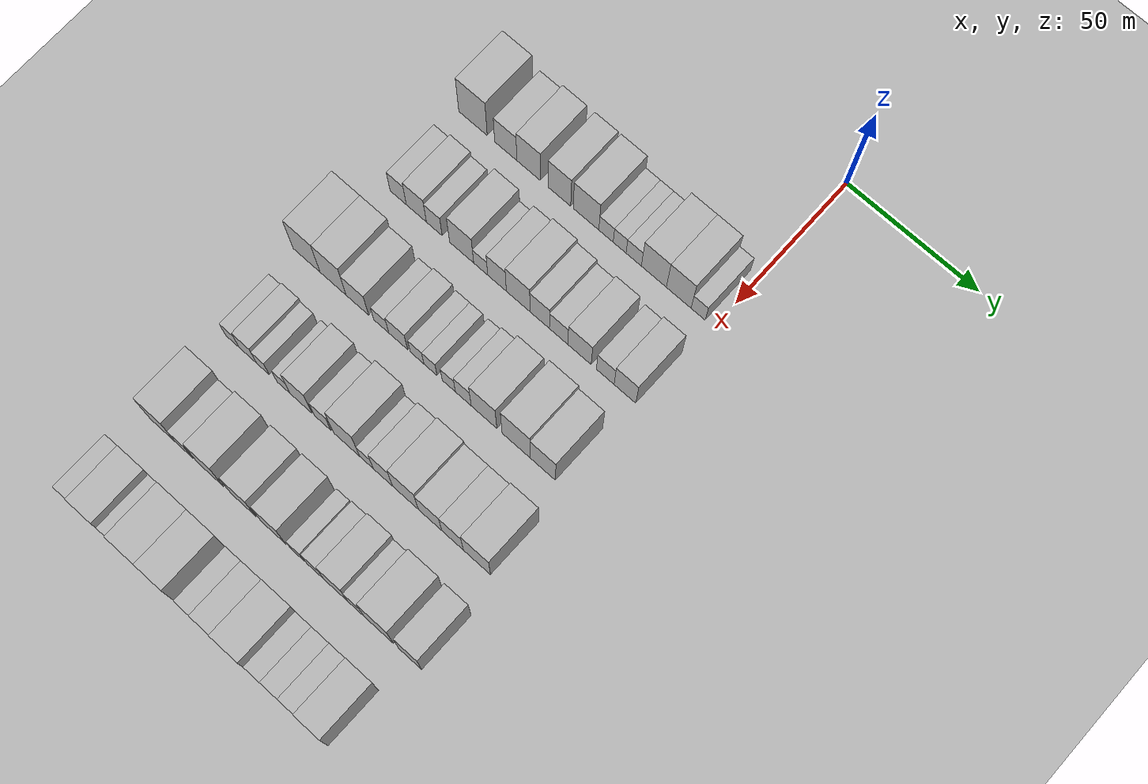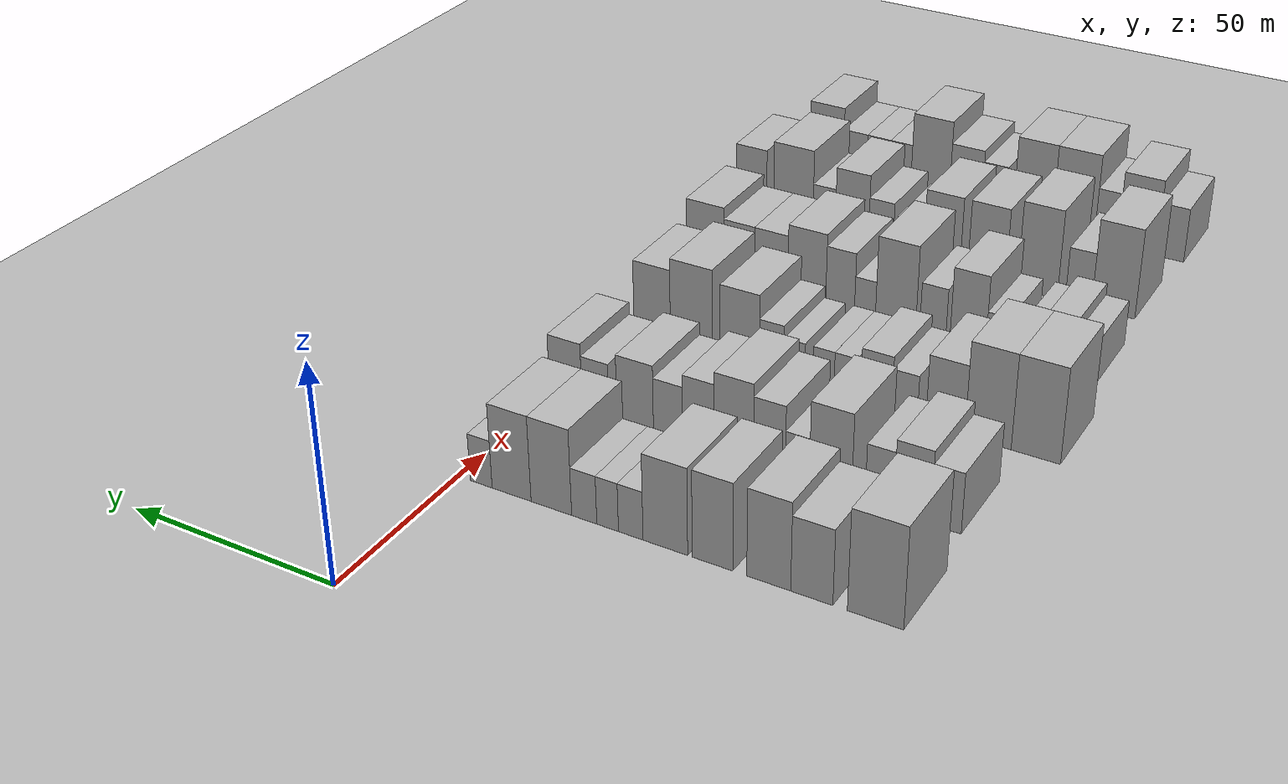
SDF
<sdf version="1.6">
 <world name="default">
  <include><name>ground_plane_1</name><uri>model://HANNAS_ground_plane</uri></include>
  <include>
   <name>ground_plane_2</name>
   <uri>model://HANNAS_ground_plane</uri>
   <pose>100 0 0  0 0 0</pose>
  </include>
  <model name="building_50">
   <static>1</static>
   <pose>50.0000 -94.4052 0 0.000000 0.000000 0.000000</pose>
   <link name="link">
    <pose>0 0 12.00 0 0 0</pose>
    <collision name="collision"><geometry><box><size>20.0000 11.4907 24.0000</size></box></geometry></collision>
    <visual name="visual">
     <cast_shadows>0</cast_shadows>
     <geometry><box><size>20.0000 11.4907 24.0000</size></box></geometry>
     <material>
      <script>
       <uri>model://HANNAS_wall/materials/scripts</uri>
       <uri>model://HANNAS_wall/materials/textures</uri>
       <name>vrc/HANNAS_wall</name>
      </script>
     </material>
    </visual>
   </link>
  </model>
  <model name="building_51">
   <static>1</static>
   <pose>50.0000 -81.2317 0 0.000000 0.000000 0.000000</pose>
   <link name="link">
    <pose>0 0 9.00 0 0 0</pose>
    <collision name="collision"><geometry><box><size>20.0000 8.8563 18.0000</size></box></geometry></collision>
    <visual name="visual">
     <cast_shadows>0</cast_shadows>
     <geometry><box><size>20.0000 8.8563 18.0000</size></box></geometry>
     <material>
      <script>
       <uri>model://HANNAS_wall/materials/scripts</uri>
       <uri>model://HANNAS_wall/materials/textures</uri>
       <name>vrc/HANNAS_wall</name>
      </script>
     </material>
    </visual>
   </link>
  </model>
  <model name="building_52">
   <static>1</static>
   <pose>50.0000 -72.1063 0 0.000000 0.000000 0.000000</pose>
   <link name="link">
    <pose>0 0 10.50 0 0 0</pose>
    <collision name="collision"><geometry><box><size>20.0000 9.3946 21.0000</size></box></geometry></collision>
    <visual name="visual">
     <cast_shadows>0</cast_shadows>
     <geometry><box><size>20.0000 9.3946 21.0000</size></box></geometry>
     <material>
      <script>
       <uri>model://HANNAS_wall/materials/scripts</uri>
       <uri>model://HANNAS_wall/materials/textures</uri>
       <name>vrc/HANNAS_wall</name>
      </script>
     </material>
    </visual>
   </link>
  </model>
  <model name="building_53">
   <static>1</static>
   <pose>50.0000 -59.9207 0 0.000000 0.000000 0.000000</pose>
   <link name="link">
    <pose>0 0 10.50 0 0 0</pose>
    <collision name="collision"><geometry><box><size>20.0000 8.9766 21.0000</size></box></geometry></collision>
    <visual name="visual">
     <cast_shadows>0</cast_shadows>
     <geometry><box><size>20.0000 8.9766 21.0000</size></box></geometry>
     <material>
      <script>
       <uri>model://HANNAS_wall/materials/scripts</uri>
       <uri>model://HANNAS_wall/materials/textures</uri>
       <name>vrc/HANNAS_wall</name>
      </script>
     </material>
    </visual>
   </link>
  </model>
  <model name="building_54">
   <static>1</static>
   <pose>50.0000 -49.4087 0 0.000000 0.000000 0.000000</pose>
   <link name="link">
    <pose>0 0 10.50 0 0 0</pose>
    <collision name="collision"><geometry><box><size>20.0000 10.0475 21.0000</size></box></geometry></collision>
    <visual name="visual">
     <cast_shadows>0</cast_shadows>
     <geometry><box><size>20.0000 10.0475 21.0000</size></box></geometry>
     <material>
      <script>
       <uri>model://HANNAS_wall/materials/scripts</uri>
       <uri>model://HANNAS_wall/materials/textures</uri>
       <name>vrc/HANNAS_wall</name>
      </script>
     </material>
    </visual>
   </link>
  </model>
  <model name="building_55">
   <static>1</static>
   <pose>50.0000 -41.5668 0 0.000000 0.000000 0.000000</pose>
   <link name="link">
    <pose>0 0 6.00 0 0 0</pose>
    <collision name="collision"><geometry><box><size>20.0000 5.6363 12.0000</size></box></geometry></collision>
    <visual name="visual">
     <cast_shadows>0</cast_shadows>
     <geometry><box><size>20.0000 5.6363 12.0000</size></box></geometry>
     <material>
      <script>
       <uri>model://HANNAS_wall/materials/scripts</uri>
       <uri>model://HANNAS_wall/materials/textures</uri>
       <name>vrc/HANNAS_wall</name>
      </script>
     </material>
    </visual>
   </link>
  </model>
  <model name="building_56">
   <static>1</static>
   <pose>50.0000 -36.2396 0 0.000000 0.000000 0.000000</pose>
   <link name="link">
    <pose>0 0 6.00 0 0 0</pose>
    <collision name="collision"><geometry><box><size>20.0000 5.0181 12.0000</size></box></geometry></collision>
    <visual name="visual">
     <cast_shadows>0</cast_shadows>
     <geometry><box><size>20.0000 5.0181 12.0000</size></box></geometry>
     <material>
      <script>
       <uri>model://HANNAS_wall/materials/scripts</uri>
       <uri>model://HANNAS_wall/materials/textures</uri>
       <name>vrc/HANNAS_wall</name>
      </script>
     </material>
    </visual>
   </link>
  </model>
  <model name="building_57">
   <static>1</static>
   <pose>50.0000 -30.7826 0 0.000000 0.000000 0.000000</pose>
   <link name="link">
    <pose>0 0 6.00 0 0 0</pose>
    <collision name="collision"><geometry><box><size>20.0000 5.8959 12.0000</size></box></geometry></collision>
    <visual name="visual">
     <cast_shadows>0</cast_shadows>
     <geometry><box><size>20.0000 5.8959 12.0000</size></box></geometry>
     <material>
      <script>
       <uri>model://HANNAS_wall/materials/scripts</uri>
       <uri>model://HANNAS_wall/materials/textures</uri>
       <name>vrc/HANNAS_wall</name>
      </script>
     </material>
    </visual>
   </link>
  </model>
  <model name="building_58">
   <static>1</static>
   <pose>50.0000 -22.9984 0 0.000000 0.000000 0.000000</pose>
   <link name="link">
    <pose>0 0 10.50 0 0 0</pose>
    <collision name="collision"><geometry><box><size>20.0000 9.6725 21.0000</size></box></geometry></collision>
    <visual name="visual">
     <cast_shadows>0</cast_shadows>
     <geometry><box><size>20.0000 9.6725 21.0000</size></box></geometry>
     <material>
      <script>
       <uri>model://HANNAS_wall/materials/scripts</uri>
       <uri>model://HANNAS_wall/materials/textures</uri>
       <name>vrc/HANNAS_wall</name>
      </script>
     </material>
    </visual>
   </link>
  </model>
  <model name="building_59">
   <static>1</static>
   <pose>50.0000 -13.4213 0 0.000000 0.000000 0.000000</pose>
   <link name="link">
    <pose>0 0 10.50 0 0 0</pose>
    <collision name="collision"><geometry><box><size>20.0000 9.4817 21.0000</size></box></geometry></collision>
    <visual name="visual">
     <cast_shadows>0</cast_shadows>
     <geometry><box><size>20.0000 9.4817 21.0000</size></box></geometry>
     <material>
      <script>
       <uri>model://HANNAS_wall/materials/scripts</uri>
       <uri>model://HANNAS_wall/materials/textures</uri>
       <name>vrc/HANNAS_wall</name>
      </script>
     </material>
    </visual>
   </link>
  </model>
  <model name="building_60">
   <static>1</static>
   <pose>50.0000 -5.9939 0 0.000000 0.000000 0.000000</pose>
   <link name="link">
    <pose>0 0 6.00 0 0 0</pose>
    <collision name="collision"><geometry><box><size>20.0000 5.3731 12.0000</size></box></geometry></collision>
    <visual name="visual">
     <cast_shadows>0</cast_shadows>
     <geometry><box><size>20.0000 5.3731 12.0000</size></box></geometry>
     <material>
      <script>
       <uri>model://HANNAS_wall/materials/scripts</uri>
       <uri>model://HANNAS_wall/materials/textures</uri>
       <name>vrc/HANNAS_wall</name>
      </script>
     </material>
    </visual>
   </link>
  </model>
  <model name="building_169">
   <static>1</static>
   <pose>82.0000 -94.7656 0 0.000000 0.000000 0.000000</pose>
   <link name="link">
    <pose>0 0 7.50 0 0 0</pose>
    <collision name="collision"><geometry><box><size>20.0000 6.5444 15.0000</size></box></geometry></collision>
    <visual name="visual">
     <cast_shadows>0</cast_shadows>
     <geometry><box><size>20.0000 6.5444 15.0000</size></box></geometry>
     <material>
      <script>
       <uri>model://HANNAS_wall/materials/scripts</uri>
       <uri>model://HANNAS_wall/materials/textures</uri>
       <name>vrc/HANNAS_wall</name>
      </script>
     </material>
    </visual>
   </link>
  </model>
  <model name="building_170">
   <static>1</static>
   <pose>82.0000 -87.4592 0 0.000000 0.000000 0.000000</pose>
   <link name="link">
    <pose>0 0 9.00 0 0 0</pose>
    <collision name="collision"><geometry><box><size>20.0000 8.0684 18.0000</size></box></geometry></collision>
    <visual name="visual">
     <cast_shadows>0</cast_shadows>
     <geometry><box><size>20.0000 8.0684 18.0000</size></box></geometry>
     <material>
      <script>
       <uri>model://HANNAS_wall/materials/scripts</uri>
       <uri>model://HANNAS_wall/materials/textures</uri>
       <name>vrc/HANNAS_wall</name>
      </script>
     </material>
    </visual>
   </link>
  </model>
  <model name="building_171">
   <static>1</static>
   <pose>82.0000 -80.2852 0 0.000000 0.000000 0.000000</pose>
   <link name="link">
    <pose>0 0 7.50 0 0 0</pose>
    <collision name="collision"><geometry><box><size>20.0000 6.2796 15.0000</size></box></geometry></collision>
    <visual name="visual">
     <cast_shadows>0</cast_shadows>
     <geometry><box><size>20.0000 6.2796 15.0000</size></box></geometry>
     <material>
      <script>
       <uri>model://HANNAS_wall/materials/scripts</uri>
       <uri>model://HANNAS_wall/materials/textures</uri>
       <name>vrc/HANNAS_wall</name>
      </script>
     </material>
    </visual>
   </link>
  </model>
  <model name="building_172">
   <static>1</static>
   <pose>82.0000 -69.3797 0 0.000000 0.000000 0.000000</pose>
   <link name="link">
    <pose>0 0 10.50 0 0 0</pose>
    <collision name="collision"><geometry><box><size>20.0000 9.5313 21.0000</size></box></geometry></collision>
    <visual name="visual">
     <cast_shadows>0</cast_shadows>
     <geometry><box><size>20.0000 9.5313 21.0000</size></box></geometry>
     <material>
      <script>
       <uri>model://HANNAS_wall/materials/scripts</uri>
       <uri>model://HANNAS_wall/materials/textures</uri>
       <name>vrc/HANNAS_wall</name>
      </script>
     </material>
    </visual>
   </link>
  </model>
  <model name="building_173">
   <static>1</static>
   <pose>82.0000 -61.8557 0 0.000000 0.000000 0.000000</pose>
   <link name="link">
    <pose>0 0 6.00 0 0 0</pose>
    <collision name="collision"><geometry><box><size>20.0000 5.5168 12.0000</size></box></geometry></collision>
    <visual name="visual">
     <cast_shadows>0</cast_shadows>
     <geometry><box><size>20.0000 5.5168 12.0000</size></box></geometry>
     <material>
      <script>
       <uri>model://HANNAS_wall/materials/scripts</uri>
       <uri>model://HANNAS_wall/materials/textures</uri>
       <name>vrc/HANNAS_wall</name>
      </script>
     </material>
    </visual>
   </link>
  </model>
  <model name="building_174">
   <static>1</static>
   <pose>82.0000 -55.4365 0 0.000000 0.000000 0.000000</pose>
   <link name="link">
    <pose>0 0 9.00 0 0 0</pose>
    <collision name="collision"><geometry><box><size>20.0000 7.3216 18.0000</size></box></geometry></collision>
    <visual name="visual">
     <cast_shadows>0</cast_shadows>
     <geometry><box><size>20.0000 7.3216 18.0000</size></box></geometry>
     <material>
      <script>
       <uri>model://HANNAS_wall/materials/scripts</uri>
       <uri>model://HANNAS_wall/materials/textures</uri>
       <name>vrc/HANNAS_wall</name>
      </script>
     </material>
    </visual>
   </link>
  </model>
  <model name="building_175">
   <static>1</static>
   <pose>82.0000 -47.1397 0 0.000000 0.000000 0.000000</pose>
   <link name="link">
    <pose>0 0 10.50 0 0 0</pose>
    <collision name="collision"><geometry><box><size>20.0000 9.2719 21.0000</size></box></geometry></collision>
    <visual name="visual">
     <cast_shadows>0</cast_shadows>
     <geometry><box><size>20.0000 9.2719 21.0000</size></box></geometry>
     <material>
      <script>
       <uri>model://HANNAS_wall/materials/scripts</uri>
       <uri>model://HANNAS_wall/materials/textures</uri>
       <name>vrc/HANNAS_wall</name>
      </script>
     </material>
    </visual>
   </link>
  </model>
  <model name="building_176">
   <static>1</static>
   <pose>82.0000 -38.7303 0 0.000000 0.000000 0.000000</pose>
   <link name="link">
    <pose>0 0 9.00 0 0 0</pose>
    <collision name="collision"><geometry><box><size>20.0000 7.5469 18.0000</size></box></geometry></collision>
    <visual name="visual">
     <cast_shadows>0</cast_shadows>
     <geometry><box><size>20.0000 7.5469 18.0000</size></box></geometry>
     <material>
      <script>
       <uri>model://HANNAS_wall/materials/scripts</uri>
       <uri>model://HANNAS_wall/materials/textures</uri>
       <name>vrc/HANNAS_wall</name>
      </script>
     </material>
    </visual>
   </link>
  </model>
  <model name="building_177">
   <static>1</static>
   <pose>82.0000 -31.4057 0 0.000000 0.000000 0.000000</pose>
   <link name="link">
    <pose>0 0 7.50 0 0 0</pose>
    <collision name="collision"><geometry><box><size>20.0000 7.1025 15.0000</size></box></geometry></collision>
    <visual name="visual">
     <cast_shadows>0</cast_shadows>
     <geometry><box><size>20.0000 7.1025 15.0000</size></box></geometry>
     <material>
      <script>
       <uri>model://HANNAS_wall/materials/scripts</uri>
       <uri>model://HANNAS_wall/materials/textures</uri>
       <name>vrc/HANNAS_wall</name>
      </script>
     </material>
    </visual>
   </link>
  </model>
  <model name="building_178">
   <static>1</static>
   <pose>82.0000 -23.3582 0 0.000000 0.000000 0.000000</pose>
   <link name="link">
    <pose>0 0 9.00 0 0 0</pose>
    <collision name="collision"><geometry><box><size>20.0000 8.9924 18.0000</size></box></geometry></collision>
    <visual name="visual">
     <cast_shadows>0</cast_shadows>
     <geometry><box><size>20.0000 8.9924 18.0000</size></box></geometry>
     <material>
      <script>
       <uri>model://HANNAS_wall/materials/scripts</uri>
       <uri>model://HANNAS_wall/materials/textures</uri>
       <name>vrc/HANNAS_wall</name>
      </script>
     </material>
    </visual>
   </link>
  </model>
  <model name="building_179">
   <static>1</static>
   <pose>82.0000 -13.4726 0 0.000000 0.000000 0.000000</pose>
   <link name="link">
    <pose>0 0 7.50 0 0 0</pose>
    <collision name="collision"><geometry><box><size>20.0000 6.7789 15.0000</size></box></geometry></collision>
    <visual name="visual">
     <cast_shadows>0</cast_shadows>
     <geometry><box><size>20.0000 6.7789 15.0000</size></box></geometry>
     <material>
      <script>
       <uri>model://HANNAS_wall/materials/scripts</uri>
       <uri>model://HANNAS_wall/materials/textures</uri>
       <name>vrc/HANNAS_wall</name>
      </script>
     </material>
    </visual>
   </link>
  </model>
  <model name="building_180">
   <static>1</static>
   <pose>82.0000 -5.9499 0 0.000000 0.000000 0.000000</pose>
   <link name="link">
    <pose>0 0 9.00 0 0 0</pose>
    <collision name="collision"><geometry><box><size>20.0000 8.2663 18.0000</size></box></geometry></collision>
    <visual name="visual">
     <cast_shadows>0</cast_shadows>
     <geometry><box><size>20.0000 8.2663 18.0000</size></box></geometry>
     <material>
      <script>
       <uri>model://HANNAS_wall/materials/scripts</uri>
       <uri>model://HANNAS_wall/materials/textures</uri>
       <name>vrc/HANNAS_wall</name>
      </script>
     </material>
    </visual>
   </link>
  </model>
  <model name="building_291">
   <static>1</static>
   <pose>114.0000 -101.2727 0 0.000000 0.000000 0.000000</pose>
   <link name="link">
    <pose>0 0 12.00 0 0 0</pose>
    <collision name="collision"><geometry><box><size>20.0000 10.9238 24.0000</size></box></geometry></collision>
    <visual name="visual">
     <cast_shadows>0</cast_shadows>
     <geometry><box><size>20.0000 10.9238 24.0000</size></box></geometry>
     <material>
      <script>
       <uri>model://HANNAS_wall/materials/scripts</uri>
       <uri>model://HANNAS_wall/materials/textures</uri>
       <name>vrc/HANNAS_wall</name>
      </script>
     </material>
    </visual>
   </link>
  </model>
  <model name="building_292">
   <static>1</static>
   <pose>114.0000 -90.5725 0 0.000000 0.000000 0.000000</pose>
   <link name="link">
    <pose>0 0 12.00 0 0 0</pose>
    <collision name="collision"><geometry><box><size>20.0000 10.4765 24.0000</size></box></geometry></collision>
    <visual name="visual">
     <cast_shadows>0</cast_shadows>
     <geometry><box><size>20.0000 10.4765 24.0000</size></box></geometry>
     <material>
      <script>
       <uri>model://HANNAS_wall/materials/scripts</uri>
       <uri>model://HANNAS_wall/materials/textures</uri>
       <name>vrc/HANNAS_wall</name>
      </script>
     </material>
    </visual>
   </link>
  </model>
  <model name="building_293">
   <static>1</static>
   <pose>114.0000 -80.8494 0 0.000000 0.000000 0.000000</pose>
   <link name="link">
    <pose>0 0 9.00 0 0 0</pose>
    <collision name="collision"><geometry><box><size>20.0000 8.9698 18.0000</size></box></geometry></collision>
    <visual name="visual">
     <cast_shadows>0</cast_shadows>
     <geometry><box><size>20.0000 8.9698 18.0000</size></box></geometry>
     <material>
      <script>
       <uri>model://HANNAS_wall/materials/scripts</uri>
       <uri>model://HANNAS_wall/materials/textures</uri>
       <name>vrc/HANNAS_wall</name>
      </script>
     </material>
    </visual>
   </link>
  </model>
  <model name="building_294">
   <static>1</static>
   <pose>114.0000 -71.3711 0 0.000000 0.000000 0.000000</pose>
   <link name="link">
    <pose>0 0 6.00 0 0 0</pose>
    <collision name="collision"><geometry><box><size>20.0000 5.9868 12.0000</size></box></geometry></collision>
    <visual name="visual">
     <cast_shadows>0</cast_shadows>
     <geometry><box><size>20.0000 5.9868 12.0000</size></box></geometry>
     <material>
      <script>
       <uri>model://HANNAS_wall/materials/scripts</uri>
       <uri>model://HANNAS_wall/materials/textures</uri>
       <name>vrc/HANNAS_wall</name>
      </script>
     </material>
    </visual>
   </link>
  </model>
  <model name="building_295">
   <static>1</static>
   <pose>114.0000 -64.6428 0 0.000000 0.000000 0.000000</pose>
   <link name="link">
    <pose>0 0 7.50 0 0 0</pose>
    <collision name="collision"><geometry><box><size>20.0000 7.4697 15.0000</size></box></geometry></collision>
    <visual name="visual">
     <cast_shadows>0</cast_shadows>
     <geometry><box><size>20.0000 7.4697 15.0000</size></box></geometry>
     <material>
      <script>
       <uri>model://HANNAS_wall/materials/scripts</uri>
       <uri>model://HANNAS_wall/materials/textures</uri>
       <name>vrc/HANNAS_wall</name>
      </script>
     </material>
    </visual>
   </link>
  </model>
  <model name="building_296">
   <static>1</static>
   <pose>114.0000 -57.2158 0 0.000000 0.000000 0.000000</pose>
   <link name="link">
    <pose>0 0 6.00 0 0 0</pose>
    <collision name="collision"><geometry><box><size>20.0000 5.3844 12.0000</size></box></geometry></collision>
    <visual name="visual">
     <cast_shadows>0</cast_shadows>
     <geometry><box><size>20.0000 5.3844 12.0000</size></box></geometry>
     <material>
      <script>
       <uri>model://HANNAS_wall/materials/scripts</uri>
       <uri>model://HANNAS_wall/materials/textures</uri>
       <name>vrc/HANNAS_wall</name>
      </script>
     </material>
    </visual>
   </link>
  </model>
  <model name="building_297">
   <static>1</static>
   <pose>114.0000 -51.9640 0 0.000000 0.000000 0.000000</pose>
   <link name="link">
    <pose>0 0 6.00 0 0 0</pose>
    <collision name="collision"><geometry><box><size>20.0000 5.1191 12.0000</size></box></geometry></collision>
    <visual name="visual">
     <cast_shadows>0</cast_shadows>
     <geometry><box><size>20.0000 5.1191 12.0000</size></box></geometry>
     <material>
      <script>
       <uri>model://HANNAS_wall/materials/scripts</uri>
       <uri>model://HANNAS_wall/materials/textures</uri>
       <name>vrc/HANNAS_wall</name>
      </script>
     </material>
    </visual>
   </link>
  </model>
  <model name="building_298">
   <static>1</static>
   <pose>114.0000 -44.8151 0 0.000000 0.000000 0.000000</pose>
   <link name="link">
    <pose>0 0 6.00 0 0 0</pose>
    <collision name="collision"><geometry><box><size>20.0000 5.1787 12.0000</size></box></geometry></collision>
    <visual name="visual">
     <cast_shadows>0</cast_shadows>
     <geometry><box><size>20.0000 5.1787 12.0000</size></box></geometry>
     <material>
      <script>
       <uri>model://HANNAS_wall/materials/scripts</uri>
       <uri>model://HANNAS_wall/materials/textures</uri>
       <name>vrc/HANNAS_wall</name>
      </script>
     </material>
    </visual>
   </link>
  </model>
  <model name="building_299">
   <static>1</static>
   <pose>114.0000 -39.1626 0 0.000000 0.000000 0.000000</pose>
   <link name="link">
    <pose>0 0 7.50 0 0 0</pose>
    <collision name="collision"><geometry><box><size>20.0000 6.1263 15.0000</size></box></geometry></collision>
    <visual name="visual">
     <cast_shadows>0</cast_shadows>
     <geometry><box><size>20.0000 6.1263 15.0000</size></box></geometry>
     <material>
      <script>
       <uri>model://HANNAS_wall/materials/scripts</uri>
       <uri>model://HANNAS_wall/materials/textures</uri>
       <name>vrc/HANNAS_wall</name>
      </script>
     </material>
    </visual>
   </link>
  </model>
  <model name="building_300">
   <static>1</static>
   <pose>114.0000 -31.1533 0 0.000000 0.000000 0.000000</pose>
   <link name="link">
    <pose>0 0 10.50 0 0 0</pose>
    <collision name="collision"><geometry><box><size>20.0000 9.8924 21.0000</size></box></geometry></collision>
    <visual name="visual">
     <cast_shadows>0</cast_shadows>
     <geometry><box><size>20.0000 9.8924 21.0000</size></box></geometry>
     <material>
      <script>
       <uri>model://HANNAS_wall/materials/scripts</uri>
       <uri>model://HANNAS_wall/materials/textures</uri>
       <name>vrc/HANNAS_wall</name>
      </script>
     </material>
    </visual>
   </link>
  </model>
  <model name="building_301">
   <static>1</static>
   <pose>114.0000 -18.8067 0 0.000000 0.000000 0.000000</pose>
   <link name="link">
    <pose>0 0 12.00 0 0 0</pose>
    <collision name="collision"><geometry><box><size>20.0000 10.8009 24.0000</size></box></geometry></collision>
    <visual name="visual">
     <cast_shadows>0</cast_shadows>
     <geometry><box><size>20.0000 10.8009 24.0000</size></box></geometry>
     <material>
      <script>
       <uri>model://HANNAS_wall/materials/scripts</uri>
       <uri>model://HANNAS_wall/materials/textures</uri>
       <name>vrc/HANNAS_wall</name>
      </script>
     </material>
    </visual>
   </link>
  </model>
  <model name="building_302">
   <static>1</static>
   <pose>114.0000 -8.6212 0 0.000000 0.000000 0.000000</pose>
   <link name="link">
    <pose>0 0 10.50 0 0 0</pose>
    <collision name="collision"><geometry><box><size>20.0000 9.5701 21.0000</size></box></geometry></collision>
    <visual name="visual">
     <cast_shadows>0</cast_shadows>
     <geometry><box><size>20.0000 9.5701 21.0000</size></box></geometry>
     <material>
      <script>
       <uri>model://HANNAS_wall/materials/scripts</uri>
       <uri>model://HANNAS_wall/materials/textures</uri>
       <name>vrc/HANNAS_wall</name>
      </script>
     </material>
    </visual>
   </link>
  </model>
  <model name="building_410">
   <static>1</static>
   <pose>146.0000 -99.9660 0 0.000000 0.000000 0.000000</pose>
   <link name="link">
    <pose>0 0 6.00 0 0 0</pose>
    <collision name="collision"><geometry><box><size>20.0000 5.4982 12.0000</size></box></geometry></collision>
    <visual name="visual">
     <cast_shadows>0</cast_shadows>
     <geometry><box><size>20.0000 5.4982 12.0000</size></box></geometry>
     <material>
      <script>
       <uri>model://HANNAS_wall/materials/scripts</uri>
       <uri>model://HANNAS_wall/materials/textures</uri>
       <name>vrc/HANNAS_wall</name>
      </script>
     </material>
    </visual>
   </link>
  </model>
  <model name="building_411">
   <static>1</static>
   <pose>146.0000 -93.7196 0 0.000000 0.000000 0.000000</pose>
   <link name="link">
    <pose>0 0 7.50 0 0 0</pose>
    <collision name="collision"><geometry><box><size>20.0000 6.9946 15.0000</size></box></geometry></collision>
    <visual name="visual">
     <cast_shadows>0</cast_shadows>
     <geometry><box><size>20.0000 6.9946 15.0000</size></box></geometry>
     <material>
      <script>
       <uri>model://HANNAS_wall/materials/scripts</uri>
       <uri>model://HANNAS_wall/materials/textures</uri>
       <name>vrc/HANNAS_wall</name>
      </script>
     </material>
    </visual>
   </link>
  </model>
  <model name="building_412">
   <static>1</static>
   <pose>146.0000 -87.6967 0 0.000000 0.000000 0.000000</pose>
   <link name="link">
    <pose>0 0 6.00 0 0 0</pose>
    <collision name="collision"><geometry><box><size>20.0000 5.0512 12.0000</size></box></geometry></collision>
    <visual name="visual">
     <cast_shadows>0</cast_shadows>
     <geometry><box><size>20.0000 5.0512 12.0000</size></box></geometry>
     <material>
      <script>
       <uri>model://HANNAS_wall/materials/scripts</uri>
       <uri>model://HANNAS_wall/materials/textures</uri>
       <name>vrc/HANNAS_wall</name>
      </script>
     </material>
    </visual>
   </link>
  </model>
  <model name="building_413">
   <static>1</static>
   <pose>146.0000 -79.4917 0 0.000000 0.000000 0.000000</pose>
   <link name="link">
    <pose>0 0 6.00 0 0 0</pose>
    <collision name="collision"><geometry><box><size>20.0000 5.3588 12.0000</size></box></geometry></collision>
    <visual name="visual">
     <cast_shadows>0</cast_shadows>
     <geometry><box><size>20.0000 5.3588 12.0000</size></box></geometry>
     <material>
      <script>
       <uri>model://HANNAS_wall/materials/scripts</uri>
       <uri>model://HANNAS_wall/materials/textures</uri>
       <name>vrc/HANNAS_wall</name>
      </script>
     </material>
    </visual>
   </link>
  </model>
  <model name="building_414">
   <static>1</static>
   <pose>146.0000 -72.4729 0 0.000000 0.000000 0.000000</pose>
   <link name="link">
    <pose>0 0 10.50 0 0 0</pose>
    <collision name="collision"><geometry><box><size>20.0000 8.6789 21.0000</size></box></geometry></collision>
    <visual name="visual">
     <cast_shadows>0</cast_shadows>
     <geometry><box><size>20.0000 8.6789 21.0000</size></box></geometry>
     <material>
      <script>
       <uri>model://HANNAS_wall/materials/scripts</uri>
       <uri>model://HANNAS_wall/materials/textures</uri>
       <name>vrc/HANNAS_wall</name>
      </script>
     </material>
    </visual>
   </link>
  </model>
  <model name="building_415">
   <static>1</static>
   <pose>146.0000 -63.8950 0 0.000000 0.000000 0.000000</pose>
   <link name="link">
    <pose>0 0 7.50 0 0 0</pose>
    <collision name="collision"><geometry><box><size>20.0000 6.4769 15.0000</size></box></geometry></collision>
    <visual name="visual">
     <cast_shadows>0</cast_shadows>
     <geometry><box><size>20.0000 6.4769 15.0000</size></box></geometry>
     <material>
      <script>
       <uri>model://HANNAS_wall/materials/scripts</uri>
       <uri>model://HANNAS_wall/materials/textures</uri>
       <name>vrc/HANNAS_wall</name>
      </script>
     </material>
    </visual>
   </link>
  </model>
  <model name="building_416">
   <static>1</static>
   <pose>146.0000 -54.5847 0 0.000000 0.000000 0.000000</pose>
   <link name="link">
    <pose>0 0 12.00 0 0 0</pose>
    <collision name="collision"><geometry><box><size>20.0000 10.1435 24.0000</size></box></geometry></collision>
    <visual name="visual">
     <cast_shadows>0</cast_shadows>
     <geometry><box><size>20.0000 10.1435 24.0000</size></box></geometry>
     <material>
      <script>
       <uri>model://HANNAS_wall/materials/scripts</uri>
       <uri>model://HANNAS_wall/materials/textures</uri>
       <name>vrc/HANNAS_wall</name>
      </script>
     </material>
    </visual>
   </link>
  </model>
  <model name="building_417">
   <static>1</static>
   <pose>146.0000 -46.8378 0 0.000000 0.000000 0.000000</pose>
   <link name="link">
    <pose>0 0 6.00 0 0 0</pose>
    <collision name="collision"><geometry><box><size>20.0000 5.3503 12.0000</size></box></geometry></collision>
    <visual name="visual">
     <cast_shadows>0</cast_shadows>
     <geometry><box><size>20.0000 5.3503 12.0000</size></box></geometry>
     <material>
      <script>
       <uri>model://HANNAS_wall/materials/scripts</uri>
       <uri>model://HANNAS_wall/materials/textures</uri>
       <name>vrc/HANNAS_wall</name>
      </script>
     </material>
    </visual>
   </link>
  </model>
  <model name="building_418">
   <static>1</static>
   <pose>146.0000 -40.4342 0 0.000000 0.000000 0.000000</pose>
   <link name="link">
    <pose>0 0 9.00 0 0 0</pose>
    <collision name="collision"><geometry><box><size>20.0000 7.4569 18.0000</size></box></geometry></collision>
    <visual name="visual">
     <cast_shadows>0</cast_shadows>
     <geometry><box><size>20.0000 7.4569 18.0000</size></box></geometry>
     <material>
      <script>
       <uri>model://HANNAS_wall/materials/scripts</uri>
       <uri>model://HANNAS_wall/materials/textures</uri>
       <name>vrc/HANNAS_wall</name>
      </script>
     </material>
    </visual>
   </link>
  </model>
  <model name="building_419">
   <static>1</static>
   <pose>146.0000 -31.7131 0 0.000000 0.000000 0.000000</pose>
   <link name="link">
    <pose>0 0 10.50 0 0 0</pose>
    <collision name="collision"><geometry><box><size>20.0000 9.9855 21.0000</size></box></geometry></collision>
    <visual name="visual">
     <cast_shadows>0</cast_shadows>
     <geometry><box><size>20.0000 9.9855 21.0000</size></box></geometry>
     <material>
      <script>
       <uri>model://HANNAS_wall/materials/scripts</uri>
       <uri>model://HANNAS_wall/materials/textures</uri>
       <name>vrc/HANNAS_wall</name>
      </script>
     </material>
    </visual>
   </link>
  </model>
  <model name="building_420">
   <static>1</static>
   <pose>146.0000 -22.2542 0 0.000000 0.000000 0.000000</pose>
   <link name="link">
    <pose>0 0 9.00 0 0 0</pose>
    <collision name="collision"><geometry><box><size>20.0000 8.9322 18.0000</size></box></geometry></collision>
    <visual name="visual">
     <cast_shadows>0</cast_shadows>
     <geometry><box><size>20.0000 8.9322 18.0000</size></box></geometry>
     <material>
      <script>
       <uri>model://HANNAS_wall/materials/scripts</uri>
       <uri>model://HANNAS_wall/materials/textures</uri>
       <name>vrc/HANNAS_wall</name>
      </script>
     </material>
    </visual>
   </link>
  </model>
  <model name="building_421">
   <static>1</static>
   <pose>146.0000 -13.6886 0 0.000000 0.000000 0.000000</pose>
   <link name="link">
    <pose>0 0 9.00 0 0 0</pose>
    <collision name="collision"><geometry><box><size>20.0000 8.1992 18.0000</size></box></geometry></collision>
    <visual name="visual">
     <cast_shadows>0</cast_shadows>
     <geometry><box><size>20.0000 8.1992 18.0000</size></box></geometry>
     <material>
      <script>
       <uri>model://HANNAS_wall/materials/scripts</uri>
       <uri>model://HANNAS_wall/materials/textures</uri>
       <name>vrc/HANNAS_wall</name>
      </script>
     </material>
    </visual>
   </link>
  </model>
  <model name="building_422">
   <static>1</static>
   <pose>146.0000 -4.4337 0 0.000000 0.000000 0.000000</pose>
   <link name="link">
    <pose>0 0 10.50 0 0 0</pose>
    <collision name="collision"><geometry><box><size>20.0000 10.3105 21.0000</size></box></geometry></collision>
    <visual name="visual">
     <cast_shadows>0</cast_shadows>
     <geometry><box><size>20.0000 10.3105 21.0000</size></box></geometry>
     <material>
      <script>
       <uri>model://HANNAS_wall/materials/scripts</uri>
       <uri>model://HANNAS_wall/materials/textures</uri>
       <name>vrc/HANNAS_wall</name>
      </script>
     </material>
    </visual>
   </link>
  </model>
  <model name="building_530">
   <static>1</static>
   <pose>178.0000 -95.8446 0 0.000000 0.000000 0.000000</pose>
   <link name="link">
    <pose>0 0 12.00 0 0 0</pose>
    <collision name="collision"><geometry><box><size>20.0000 10.5794 24.0000</size></box></geometry></collision>
    <visual name="visual">
     <cast_shadows>0</cast_shadows>
     <geometry><box><size>20.0000 10.5794 24.0000</size></box></geometry>
     <material>
      <script>
       <uri>model://HANNAS_wall/materials/scripts</uri>
       <uri>model://HANNAS_wall/materials/textures</uri>
       <name>vrc/HANNAS_wall</name>
      </script>
     </material>
    </visual>
   </link>
  </model>
  <model name="building_531">
   <static>1</static>
   <pose>178.0000 -87.3050 0 0.000000 0.000000 0.000000</pose>
   <link name="link">
    <pose>0 0 7.50 0 0 0</pose>
    <collision name="collision"><geometry><box><size>20.0000 6.4997 15.0000</size></box></geometry></collision>
    <visual name="visual">
     <cast_shadows>0</cast_shadows>
     <geometry><box><size>20.0000 6.4997 15.0000</size></box></geometry>
     <material>
      <script>
       <uri>model://HANNAS_wall/materials/scripts</uri>
       <uri>model://HANNAS_wall/materials/textures</uri>
       <name>vrc/HANNAS_wall</name>
      </script>
     </material>
    </visual>
   </link>
  </model>
  <model name="building_532">
   <static>1</static>
   <pose>178.0000 -76.9969 0 0.000000 0.000000 0.000000</pose>
   <link name="link">
    <pose>0 0 12.00 0 0 0</pose>
    <collision name="collision"><geometry><box><size>20.0000 10.1165 24.0000</size></box></geometry></collision>
    <visual name="visual">
     <cast_shadows>0</cast_shadows>
     <geometry><box><size>20.0000 10.1165 24.0000</size></box></geometry>
     <material>
      <script>
       <uri>model://HANNAS_wall/materials/scripts</uri>
       <uri>model://HANNAS_wall/materials/textures</uri>
       <name>vrc/HANNAS_wall</name>
      </script>
     </material>
    </visual>
   </link>
  </model>
  <model name="building_533">
   <static>1</static>
   <pose>178.0000 -64.0247 0 0.000000 0.000000 0.000000</pose>
   <link name="link">
    <pose>0 0 10.50 0 0 0</pose>
    <collision name="collision"><geometry><box><size>20.0000 9.8280 21.0000</size></box></geometry></collision>
    <visual name="visual">
     <cast_shadows>0</cast_shadows>
     <geometry><box><size>20.0000 9.8280 21.0000</size></box></geometry>
     <material>
      <script>
       <uri>model://HANNAS_wall/materials/scripts</uri>
       <uri>model://HANNAS_wall/materials/textures</uri>
       <name>vrc/HANNAS_wall</name>
      </script>
     </material>
    </visual>
   </link>
  </model>
  <model name="building_534">
   <static>1</static>
   <pose>178.0000 -52.2775 0 0.000000 0.000000 0.000000</pose>
   <link name="link">
    <pose>0 0 10.50 0 0 0</pose>
    <collision name="collision"><geometry><box><size>20.0000 9.6665 21.0000</size></box></geometry></collision>
    <visual name="visual">
     <cast_shadows>0</cast_shadows>
     <geometry><box><size>20.0000 9.6665 21.0000</size></box></geometry>
     <material>
      <script>
       <uri>model://HANNAS_wall/materials/scripts</uri>
       <uri>model://HANNAS_wall/materials/textures</uri>
       <name>vrc/HANNAS_wall</name>
      </script>
     </material>
    </visual>
   </link>
  </model>
  <model name="building_535">
   <static>1</static>
   <pose>178.0000 -42.8816 0 0.000000 0.000000 0.000000</pose>
   <link name="link">
    <pose>0 0 6.00 0 0 0</pose>
    <collision name="collision"><geometry><box><size>20.0000 5.1253 12.0000</size></box></geometry></collision>
    <visual name="visual">
     <cast_shadows>0</cast_shadows>
     <geometry><box><size>20.0000 5.1253 12.0000</size></box></geometry>
     <material>
      <script>
       <uri>model://HANNAS_wall/materials/scripts</uri>
       <uri>model://HANNAS_wall/materials/textures</uri>
       <name>vrc/HANNAS_wall</name>
      </script>
     </material>
    </visual>
   </link>
  </model>
  <model name="building_536">
   <static>1</static>
   <pose>178.0000 -35.9800 0 0.000000 0.000000 0.000000</pose>
   <link name="link">
    <pose>0 0 7.50 0 0 0</pose>
    <collision name="collision"><geometry><box><size>20.0000 6.6779 15.0000</size></box></geometry></collision>
    <visual name="visual">
     <cast_shadows>0</cast_shadows>
     <geometry><box><size>20.0000 6.6779 15.0000</size></box></geometry>
     <material>
      <script>
       <uri>model://HANNAS_wall/materials/scripts</uri>
       <uri>model://HANNAS_wall/materials/textures</uri>
       <name>vrc/HANNAS_wall</name>
      </script>
     </material>
    </visual>
   </link>
  </model>
  <model name="building_537">
   <static>1</static>
   <pose>178.0000 -28.0818 0 0.000000 0.000000 0.000000</pose>
   <link name="link">
    <pose>0 0 10.50 0 0 0</pose>
    <collision name="collision"><geometry><box><size>20.0000 9.1185 21.0000</size></box></geometry></collision>
    <visual name="visual">
     <cast_shadows>0</cast_shadows>
     <geometry><box><size>20.0000 9.1185 21.0000</size></box></geometry>
     <material>
      <script>
       <uri>model://HANNAS_wall/materials/scripts</uri>
       <uri>model://HANNAS_wall/materials/textures</uri>
       <name>vrc/HANNAS_wall</name>
      </script>
     </material>
    </visual>
   </link>
  </model>
  <model name="building_538">
   <static>1</static>
   <pose>178.0000 -20.4115 0 0.000000 0.000000 0.000000</pose>
   <link name="link">
    <pose>0 0 7.50 0 0 0</pose>
    <collision name="collision"><geometry><box><size>20.0000 6.2220 15.0000</size></box></geometry></collision>
    <visual name="visual">
     <cast_shadows>0</cast_shadows>
     <geometry><box><size>20.0000 6.2220 15.0000</size></box></geometry>
     <material>
      <script>
       <uri>model://HANNAS_wall/materials/scripts</uri>
       <uri>model://HANNAS_wall/materials/textures</uri>
       <name>vrc/HANNAS_wall</name>
      </script>
     </material>
    </visual>
   </link>
  </model>
  <model name="building_539">
   <static>1</static>
   <pose>178.0000 -11.7643 0 0.000000 0.000000 0.000000</pose>
   <link name="link">
    <pose>0 0 12.00 0 0 0</pose>
    <collision name="collision"><geometry><box><size>20.0000 11.0725 24.0000</size></box></geometry></collision>
    <visual name="visual">
     <cast_shadows>0</cast_shadows>
     <geometry><box><size>20.0000 11.0725 24.0000</size></box></geometry>
     <material>
      <script>
       <uri>model://HANNAS_wall/materials/scripts</uri>
       <uri>model://HANNAS_wall/materials/textures</uri>
       <name>vrc/HANNAS_wall</name>
      </script>
     </material>
    </visual>
   </link>
  </model>
  <model name="building_540">
   <static>1</static>
   <pose>178.0000 0.1070 0 0.000000 0.000000 0.000000</pose>
   <link name="link">
    <pose>0 0 10.50 0 0 0</pose>
    <collision name="collision"><geometry><box><size>20.0000 8.6699 21.0000</size></box></geometry></collision>
    <visual name="visual">
     <cast_shadows>0</cast_shadows>
     <geometry><box><size>20.0000 8.6699 21.0000</size></box></geometry>
     <material>
      <script>
       <uri>model://HANNAS_wall/materials/scripts</uri>
       <uri>model://HANNAS_wall/materials/textures</uri>
       <name>vrc/HANNAS_wall</name>
      </script>
     </material>
    </visual>
   </link>
  </model>
  <model name="building_648">
   <static>1</static>
   <pose>210.0000 -99.3403 0 0.000000 0.000000 0.000000</pose>
   <link name="link">
    <pose>0 0 7.50 0 0 0</pose>
    <collision name="collision"><geometry><box><size>20.0000 6.9131 15.0000</size></box></geometry></collision>
    <visual name="visual">
     <cast_shadows>0</cast_shadows>
     <geometry><box><size>20.0000 6.9131 15.0000</size></box></geometry>
     <material>
      <script>
       <uri>model://HANNAS_wall/materials/scripts</uri>
       <uri>model://HANNAS_wall/materials/textures</uri>
       <name>vrc/HANNAS_wall</name>
      </script>
     </material>
    </visual>
   </link>
  </model>
  <model name="building_649">
   <static>1</static>
   <pose>210.0000 -90.8567 0 0.000000 0.000000 0.000000</pose>
   <link name="link">
    <pose>0 0 10.50 0 0 0</pose>
    <collision name="collision"><geometry><box><size>20.0000 10.0540 21.0000</size></box></geometry></collision>
    <visual name="visual">
     <cast_shadows>0</cast_shadows>
     <geometry><box><size>20.0000 10.0540 21.0000</size></box></geometry>
     <material>
      <script>
       <uri>model://HANNAS_wall/materials/scripts</uri>
       <uri>model://HANNAS_wall/materials/textures</uri>
       <name>vrc/HANNAS_wall</name>
      </script>
     </material>
    </visual>
   </link>
  </model>
  <model name="building_650">
   <static>1</static>
   <pose>210.0000 -82.8246 0 0.000000 0.000000 0.000000</pose>
   <link name="link">
    <pose>0 0 7.50 0 0 0</pose>
    <collision name="collision"><geometry><box><size>20.0000 6.0102 15.0000</size></box></geometry></collision>
    <visual name="visual">
     <cast_shadows>0</cast_shadows>
     <geometry><box><size>20.0000 6.0102 15.0000</size></box></geometry>
     <material>
      <script>
       <uri>model://HANNAS_wall/materials/scripts</uri>
       <uri>model://HANNAS_wall/materials/textures</uri>
       <name>vrc/HANNAS_wall</name>
      </script>
     </material>
    </visual>
   </link>
  </model>
  <model name="building_651">
   <static>1</static>
   <pose>210.0000 -74.2243 0 0.000000 0.000000 0.000000</pose>
   <link name="link">
    <pose>0 0 12.00 0 0 0</pose>
    <collision name="collision"><geometry><box><size>20.0000 11.1905 24.0000</size></box></geometry></collision>
    <visual name="visual">
     <cast_shadows>0</cast_shadows>
     <geometry><box><size>20.0000 11.1905 24.0000</size></box></geometry>
     <material>
      <script>
       <uri>model://HANNAS_wall/materials/scripts</uri>
       <uri>model://HANNAS_wall/materials/textures</uri>
       <name>vrc/HANNAS_wall</name>
      </script>
     </material>
    </visual>
   </link>
  </model>
  <model name="building_652">
   <static>1</static>
   <pose>210.0000 -63.3573 0 0.000000 0.000000 0.000000</pose>
   <link name="link">
    <pose>0 0 12.00 0 0 0</pose>
    <collision name="collision"><geometry><box><size>20.0000 10.5434 24.0000</size></box></geometry></collision>
    <visual name="visual">
     <cast_shadows>0</cast_shadows>
     <geometry><box><size>20.0000 10.5434 24.0000</size></box></geometry>
     <material>
      <script>
       <uri>model://HANNAS_wall/materials/scripts</uri>
       <uri>model://HANNAS_wall/materials/textures</uri>
       <name>vrc/HANNAS_wall</name>
      </script>
     </material>
    </visual>
   </link>
  </model>
  <model name="building_653">
   <static>1</static>
   <pose>210.0000 -52.8078 0 0.000000 0.000000 0.000000</pose>
   <link name="link">
    <pose>0 0 7.50 0 0 0</pose>
    <collision name="collision"><geometry><box><size>20.0000 6.5555 15.0000</size></box></geometry></collision>
    <visual name="visual">
     <cast_shadows>0</cast_shadows>
     <geometry><box><size>20.0000 6.5555 15.0000</size></box></geometry>
     <material>
      <script>
       <uri>model://HANNAS_wall/materials/scripts</uri>
       <uri>model://HANNAS_wall/materials/textures</uri>
       <name>vrc/HANNAS_wall</name>
      </script>
     </material>
    </visual>
   </link>
  </model>
  <model name="building_654">
   <static>1</static>
   <pose>210.0000 -45.0509 0 0.000000 0.000000 0.000000</pose>
   <link name="link">
    <pose>0 0 9.00 0 0 0</pose>
    <collision name="collision"><geometry><box><size>20.0000 8.9584 18.0000</size></box></geometry></collision>
    <visual name="visual">
     <cast_shadows>0</cast_shadows>
     <geometry><box><size>20.0000 8.9584 18.0000</size></box></geometry>
     <material>
      <script>
       <uri>model://HANNAS_wall/materials/scripts</uri>
       <uri>model://HANNAS_wall/materials/textures</uri>
       <name>vrc/HANNAS_wall</name>
      </script>
     </material>
    </visual>
   </link>
  </model>
  <model name="building_655">
   <static>1</static>
   <pose>210.0000 -35.1419 0 0.000000 0.000000 0.000000</pose>
   <link name="link">
    <pose>0 0 12.00 0 0 0</pose>
    <collision name="collision"><geometry><box><size>20.0000 10.8595 24.0000</size></box></geometry></collision>
    <visual name="visual">
     <cast_shadows>0</cast_shadows>
     <geometry><box><size>20.0000 10.8595 24.0000</size></box></geometry>
     <material>
      <script>
       <uri>model://HANNAS_wall/materials/scripts</uri>
       <uri>model://HANNAS_wall/materials/textures</uri>
       <name>vrc/HANNAS_wall</name>
      </script>
     </material>
    </visual>
   </link>
  </model>
  <model name="building_656">
   <static>1</static>
   <pose>210.0000 -26.6668 0 0.000000 0.000000 0.000000</pose>
   <link name="link">
    <pose>0 0 7.50 0 0 0</pose>
    <collision name="collision"><geometry><box><size>20.0000 6.0906 15.0000</size></box></geometry></collision>
    <visual name="visual">
     <cast_shadows>0</cast_shadows>
     <geometry><box><size>20.0000 6.0906 15.0000</size></box></geometry>
     <material>
      <script>
       <uri>model://HANNAS_wall/materials/scripts</uri>
       <uri>model://HANNAS_wall/materials/textures</uri>
       <name>vrc/HANNAS_wall</name>
      </script>
     </material>
    </visual>
   </link>
  </model>
  <model name="building_657">
   <static>1</static>
   <pose>210.0000 -20.3360 0 0.000000 0.000000 0.000000</pose>
   <link name="link">
    <pose>0 0 7.50 0 0 0</pose>
    <collision name="collision"><geometry><box><size>20.0000 6.5711 15.0000</size></box></geometry></collision>
    <visual name="visual">
     <cast_shadows>0</cast_shadows>
     <geometry><box><size>20.0000 6.5711 15.0000</size></box></geometry>
     <material>
      <script>
       <uri>model://HANNAS_wall/materials/scripts</uri>
       <uri>model://HANNAS_wall/materials/textures</uri>
       <name>vrc/HANNAS_wall</name>
      </script>
     </material>
    </visual>
   </link>
  </model>
  <model name="building_658">
   <static>1</static>
   <pose>210.0000 -13.6410 0 0.000000 0.000000 0.000000</pose>
   <link name="link">
    <pose>0 0 7.50 0 0 0</pose>
    <collision name="collision"><geometry><box><size>20.0000 6.8188 15.0000</size></box></geometry></collision>
    <visual name="visual">
     <cast_shadows>0</cast_shadows>
     <geometry><box><size>20.0000 6.8188 15.0000</size></box></geometry>
     <material>
      <script>
       <uri>model://HANNAS_wall/materials/scripts</uri>
       <uri>model://HANNAS_wall/materials/textures</uri>
       <name>vrc/HANNAS_wall</name>
      </script>
     </material>
    </visual>
   </link>
  </model>
  <model name="building_659">
   <static>1</static>
   <pose>210.0000 -5.3128 0 0.000000 0.000000 0.000000</pose>
   <link name="link">
    <pose>0 0 10.50 0 0 0</pose>
    <collision name="collision"><geometry><box><size>20.0000 9.8377 21.0000</size></box></geometry></collision>
    <visual name="visual">
     <cast_shadows>0</cast_shadows>
     <geometry><box><size>20.0000 9.8377 21.0000</size></box></geometry>
     <material>
      <script>
       <uri>model://HANNAS_wall/materials/scripts</uri>
       <uri>model://HANNAS_wall/materials/textures</uri>
       <name>vrc/HANNAS_wall</name>
      </script>
     </material>
    </visual>
   </link>
  </model>
 </world>
</sdf>
